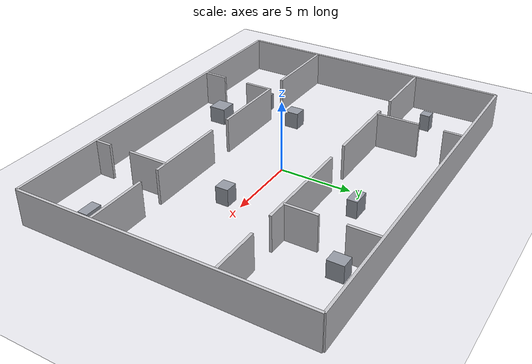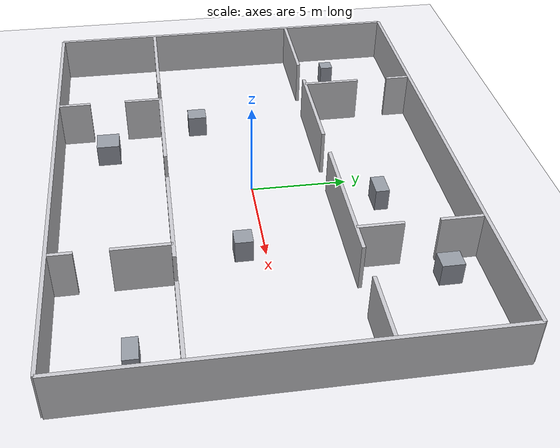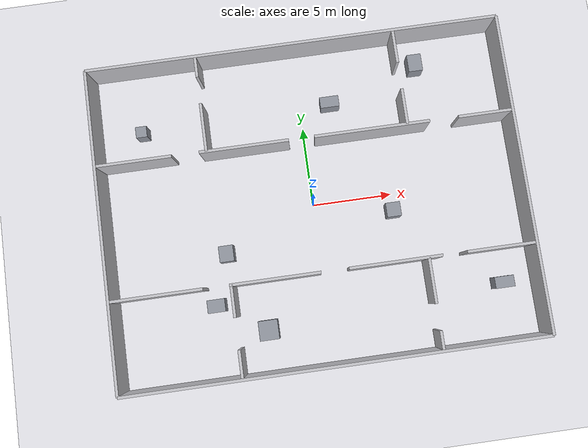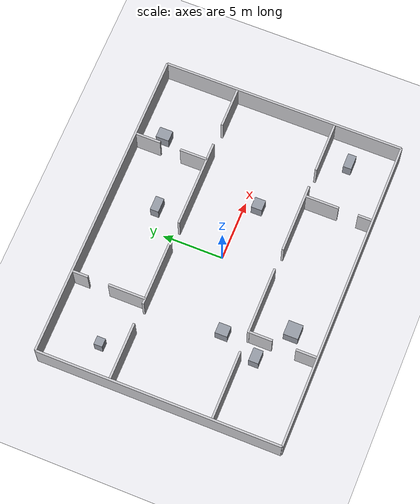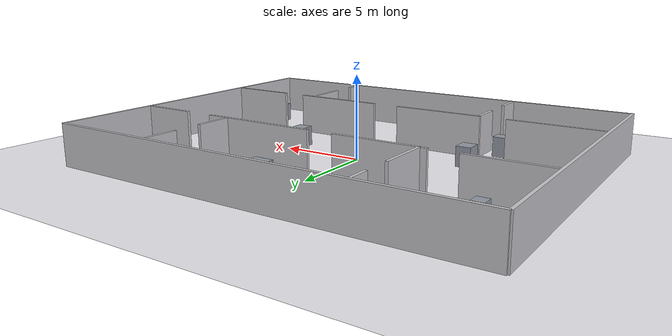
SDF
<?xml version="1.0"?>
<sdf version="1.9"><world name="new_room_world">
<plugin filename="gz-sim-physics-system" name="gz::sim::systems::Physics"/><plugin filename="gz-sim-user-commands-system" name="gz::sim::systems::UserCommands"/><plugin filename="gz-sim-scene-broadcaster-system" name="gz::sim::systems::SceneBroadcaster"/><plugin filename="gz-sim-sensors-system" name="gz::sim::systems::Sensors"><render_engine>ogre2</render_engine></plugin><plugin filename="gz-sim-imu-system" name="gz::sim::systems::Imu"/>
<physics name="new_room_realtime" type="ignored"><max_step_size>0.001</max_step_size><real_time_factor>1</real_time_factor></physics><gravity>0 0 -9.8</gravity><scene><ambient>0.85 0.85 0.87 1</ambient><background>0.68 0.68 0.71 1</background><shadows>false</shadows></scene><light name="sun" type="directional"><cast_shadows>false</cast_shadows><pose>0 0 10 0 0 0</pose><diffuse>0.95 0.95 0.95 1</diffuse><direction>-0.3 0.2 -1</direction></light>
<model name="new_room_ground"><static>true</static><link name="ground_link"><collision name="ground_collision"><geometry><plane><normal>0 0 1</normal><size>40 32</size></plane></geometry></collision><visual name="ground_visual"><geometry><plane><normal>0 0 1</normal><size>40 32</size></plane></geometry><material><ambient>0.92 0.92 0.94 1</ambient><diffuse>0.92 0.92 0.94 1</diffuse></material></visual></link></model>
<model name="mini_hospital_structure"><static>true</static><link name="structure">
<collision name="mx048_c000"><pose>0 10 1.25 0 0 0</pose><geometry><box><size>26 0.18 2.5</size></box></geometry></collision><visual name="mx048_v000"><pose>0 10 1.25 0 0 0</pose><geometry><box><size>26 0.18 2.5</size></box></geometry><material><ambient>0.78 0.78 0.80 1</ambient><diffuse>0.78 0.78 0.80 1</diffuse></material></visual>
<collision name="mx048_c001"><pose>0 -10 1.25 0 0 0</pose><geometry><box><size>26 0.18 2.5</size></box></geometry></collision><visual name="mx048_v001"><pose>0 -10 1.25 0 0 0</pose><geometry><box><size>26 0.18 2.5</size></box></geometry><material><ambient>0.78 0.78 0.80 1</ambient><diffuse>0.78 0.78 0.80 1</diffuse></material></visual>
<collision name="mx048_c002"><pose>-13 0 1.25 0 0 0</pose><geometry><box><size>0.18 20 2.5</size></box></geometry></collision><visual name="mx048_v002"><pose>-13 0 1.25 0 0 0</pose><geometry><box><size>0.18 20 2.5</size></box></geometry><material><ambient>0.78 0.78 0.80 1</ambient><diffuse>0.78 0.78 0.80 1</diffuse></material></visual>
<collision name="mx048_c003"><pose>13 0 1.25 0 0 0</pose><geometry><box><size>0.18 20 2.5</size></box></geometry></collision><visual name="mx048_v003"><pose>13 0 1.25 0 0 0</pose><geometry><box><size>0.18 20 2.5</size></box></geometry><material><ambient>0.78 0.78 0.80 1</ambient><diffuse>0.78 0.78 0.80 1</diffuse></material></visual>
<collision name="mx048_c004"><pose>-10.58 3.9 1.25 0 0 0</pose><geometry><box><size>4.66 0.18 2.5</size></box></geometry></collision><visual name="mx048_v004"><pose>-10.58 3.9 1.25 0 0 0</pose><geometry><box><size>4.66 0.18 2.5</size></box></geometry><material><ambient>0.78 0.78 0.80 1</ambient><diffuse>0.78 0.78 0.80 1</diffuse></material></visual>
<collision name="mx048_c005"><pose>-3.775 3.9 1.25 0 0 0</pose><geometry><box><size>5.55 0.18 2.5</size></box></geometry></collision><visual name="mx048_v005"><pose>-3.775 3.9 1.25 0 0 0</pose><geometry><box><size>5.55 0.18 2.5</size></box></geometry><material><ambient>0.78 0.78 0.80 1</ambient><diffuse>0.78 0.78 0.80 1</diffuse></material></visual>
<collision name="mx048_c006"><pose>4.2 3.9 1.25 0 0 0</pose><geometry><box><size>7.2 0.18 2.5</size></box></geometry></collision><visual name="mx048_v006"><pose>4.2 3.9 1.25 0 0 0</pose><geometry><box><size>7.2 0.18 2.5</size></box></geometry><material><ambient>0.78 0.78 0.80 1</ambient><diffuse>0.78 0.78 0.80 1</diffuse></material></visual>
<collision name="mx048_c007"><pose>11.255 3.9 1.25 0 0 0</pose><geometry><box><size>3.31 0.18 2.5</size></box></geometry></collision><visual name="mx048_v007"><pose>11.255 3.9 1.25 0 0 0</pose><geometry><box><size>3.31 0.18 2.5</size></box></geometry><material><ambient>0.78 0.78 0.80 1</ambient><diffuse>0.78 0.78 0.80 1</diffuse></material></visual>
<collision name="mx048_c008"><pose>-10.105 -4.4 1.25 0 0 0</pose><geometry><box><size>5.61 0.18 2.5</size></box></geometry></collision><visual name="mx048_v008"><pose>-10.105 -4.4 1.25 0 0 0</pose><geometry><box><size>5.61 0.18 2.5</size></box></geometry><material><ambient>0.78 0.78 0.80 1</ambient><diffuse>0.78 0.78 0.80 1</diffuse></material></visual>
<collision name="mx048_c009"><pose>-2.925 -4.4 1.25 0 0 0</pose><geometry><box><size>5.55 0.18 2.5</size></box></geometry></collision><visual name="mx048_v009"><pose>-2.925 -4.4 1.25 0 0 0</pose><geometry><box><size>5.55 0.18 2.5</size></box></geometry><material><ambient>0.78 0.78 0.80 1</ambient><diffuse>0.78 0.78 0.80 1</diffuse></material></visual>
<collision name="mx048_c010"><pose>4.4 -4.4 1.25 0 0 0</pose><geometry><box><size>5.7 0.18 2.5</size></box></geometry></collision><visual name="mx048_v010"><pose>4.4 -4.4 1.25 0 0 0</pose><geometry><box><size>5.7 0.18 2.5</size></box></geometry><material><ambient>0.78 0.78 0.80 1</ambient><diffuse>0.78 0.78 0.80 1</diffuse></material></visual>
<collision name="mx048_c011"><pose>10.83 -4.4 1.25 0 0 0</pose><geometry><box><size>4.16 0.18 2.5</size></box></geometry></collision><visual name="mx048_v011"><pose>10.83 -4.4 1.25 0 0 0</pose><geometry><box><size>4.16 0.18 2.5</size></box></geometry><material><ambient>0.78 0.78 0.80 1</ambient><diffuse>0.78 0.78 0.80 1</diffuse></material></visual>
<collision name="mx048_c012"><pose>-6.1 5.425 1.25 0 0 0</pose><geometry><box><size>0.18 3.05 2.5</size></box></geometry></collision><visual name="mx048_v012"><pose>-6.1 5.425 1.25 0 0 0</pose><geometry><box><size>0.18 3.05 2.5</size></box></geometry><material><ambient>0.78 0.78 0.80 1</ambient><diffuse>0.78 0.78 0.80 1</diffuse></material></visual>
<collision name="mx048_c013"><pose>-6.1 9.28 1.25 0 0 0</pose><geometry><box><size>0.18 1.26 2.5</size></box></geometry></collision><visual name="mx048_v013"><pose>-6.1 9.28 1.25 0 0 0</pose><geometry><box><size>0.18 1.26 2.5</size></box></geometry><material><ambient>0.78 0.78 0.80 1</ambient><diffuse>0.78 0.78 0.80 1</diffuse></material></visual>
<collision name="mx048_c014"><pose>6.4 5.025 1.25 0 0 0</pose><geometry><box><size>0.18 2.25 2.5</size></box></geometry></collision><visual name="mx048_v014"><pose>6.4 5.025 1.25 0 0 0</pose><geometry><box><size>0.18 2.25 2.5</size></box></geometry><material><ambient>0.78 0.78 0.80 1</ambient><diffuse>0.78 0.78 0.80 1</diffuse></material></visual>
<collision name="mx048_c015"><pose>6.4 8.88 1.25 0 0 0</pose><geometry><box><size>0.18 2.06 2.5</size></box></geometry></collision><visual name="mx048_v015"><pose>6.4 8.88 1.25 0 0 0</pose><geometry><box><size>0.18 2.06 2.5</size></box></geometry><material><ambient>0.78 0.78 0.80 1</ambient><diffuse>0.78 0.78 0.80 1</diffuse></material></visual>
<collision name="mx048_c016"><pose>-5.6 -9.08 1.25 0 0 0</pose><geometry><box><size>0.18 1.66 2.5</size></box></geometry></collision><visual name="mx048_v016"><pose>-5.6 -9.08 1.25 0 0 0</pose><geometry><box><size>0.18 1.66 2.5</size></box></geometry><material><ambient>0.78 0.78 0.80 1</ambient><diffuse>0.78 0.78 0.80 1</diffuse></material></visual>
<collision name="mx048_c017"><pose>-5.6 -5.375 1.25 0 0 0</pose><geometry><box><size>0.18 1.95 2.5</size></box></geometry></collision><visual name="mx048_v017"><pose>-5.6 -5.375 1.25 0 0 0</pose><geometry><box><size>0.18 1.95 2.5</size></box></geometry><material><ambient>0.78 0.78 0.80 1</ambient><diffuse>0.78 0.78 0.80 1</diffuse></material></visual>
<collision name="mx048_c018"><pose>6.4 -9.355 1.25 0 0 0</pose><geometry><box><size>0.18 1.11 2.5</size></box></geometry></collision><visual name="mx048_v018"><pose>6.4 -9.355 1.25 0 0 0</pose><geometry><box><size>0.18 1.11 2.5</size></box></geometry><material><ambient>0.78 0.78 0.80 1</ambient><diffuse>0.78 0.78 0.80 1</diffuse></material></visual>
<collision name="mx048_c019"><pose>6.4 -5.8 1.25 0 0 0</pose><geometry><box><size>0.18 2.8 2.5</size></box></geometry></collision><visual name="mx048_v019"><pose>6.4 -5.8 1.25 0 0 0</pose><geometry><box><size>0.18 2.8 2.5</size></box></geometry><material><ambient>0.78 0.78 0.80 1</ambient><diffuse>0.78 0.78 0.80 1</diffuse></material></visual>
<collision name="mx048_c020"><pose>-10.2 6 0.6 0 0 0</pose><geometry><box><size>0.7 0.7 1.2</size></box></geometry></collision><visual name="mx048_v020"><pose>-10.2 6 0.6 0 0 0</pose><geometry><box><size>0.7 0.7 1.2</size></box></geometry><material><ambient>0.58 0.60 0.64 1</ambient><diffuse>0.58 0.60 0.64 1</diffuse></material></visual>
<collision name="mx048_c021"><pose>1.9 6.3 0.6 0 0 0</pose><geometry><box><size>1.2 0.7 1.2</size></box></geometry></collision><visual name="mx048_v021"><pose>1.9 6.3 0.6 0 0 0</pose><geometry><box><size>1.2 0.7 1.2</size></box></geometry><material><ambient>0.58 0.60 0.64 1</ambient><diffuse>0.58 0.60 0.64 1</diffuse></material></visual>
<collision name="mx048_c022"><pose>7.7 8.1 0.6 0 0 0</pose><geometry><box><size>0.9 1.1 1.2</size></box></geometry></collision><visual name="mx048_v022"><pose>7.7 8.1 0.6 0 0 0</pose><geometry><box><size>0.9 1.1 1.2</size></box></geometry><material><ambient>0.58 0.60 0.64 1</ambient><diffuse>0.58 0.60 0.64 1</diffuse></material></visual>
<collision name="mx048_c023"><pose>-6.8 -5.5 0.6 0 0 0</pose><geometry><box><size>1.1 0.8 1.2</size></box></geometry></collision><visual name="mx048_v023"><pose>-6.8 -5.5 0.6 0 0 0</pose><geometry><box><size>1.1 0.8 1.2</size></box></geometry><material><ambient>0.58 0.60 0.64 1</ambient><diffuse>0.58 0.60 0.64 1</diffuse></material></visual>
<collision name="mx048_c024"><pose>-3.8 -7.4 0.6 0 0 0</pose><geometry><box><size>1.2 1.2 1.2</size></box></geometry></collision><visual name="mx048_v024"><pose>-3.8 -7.4 0.6 0 0 0</pose><geometry><box><size>1.2 1.2 1.2</size></box></geometry><material><ambient>0.58 0.60 0.64 1</ambient><diffuse>0.58 0.60 0.64 1</diffuse></material></visual>
<collision name="mx048_c025"><pose>11 -6.5 0.6 0 0 0</pose><geometry><box><size>1.2 0.7 1.2</size></box></geometry></collision><visual name="mx048_v025"><pose>11 -6.5 0.6 0 0 0</pose><geometry><box><size>1.2 0.7 1.2</size></box></geometry><material><ambient>0.58 0.60 0.64 1</ambient><diffuse>0.58 0.60 0.64 1</diffuse></material></visual>
<collision name="mx048_c026"><pose>-5.8 -2.4 0.6 0 0 0</pose><geometry><box><size>0.9 1 1.2</size></box></geometry></collision><visual name="mx048_v026"><pose>-5.8 -2.4 0.6 0 0 0</pose><geometry><box><size>0.9 1 1.2</size></box></geometry><material><ambient>0.58 0.60 0.64 1</ambient><diffuse>0.58 0.60 0.64 1</diffuse></material></visual>
<collision name="mx048_c027"><pose>4.9 -1.1 0.6 0 0 0</pose><geometry><box><size>0.9 0.9 1.2</size></box></geometry></collision><visual name="mx048_v027"><pose>4.9 -1.1 0.6 0 0 0</pose><geometry><box><size>0.9 0.9 1.2</size></box></geometry><material><ambient>0.58 0.60 0.64 1</ambient><diffuse>0.58 0.60 0.64 1</diffuse></material></visual>
</link></model></world></sdf>
